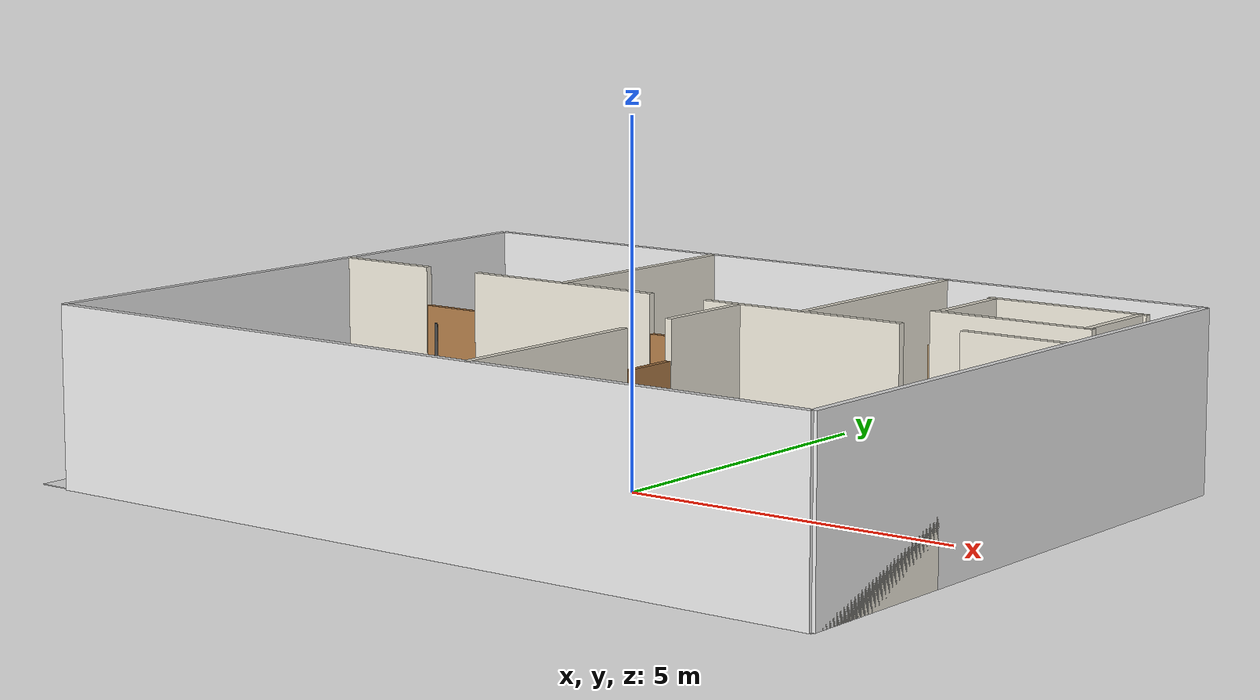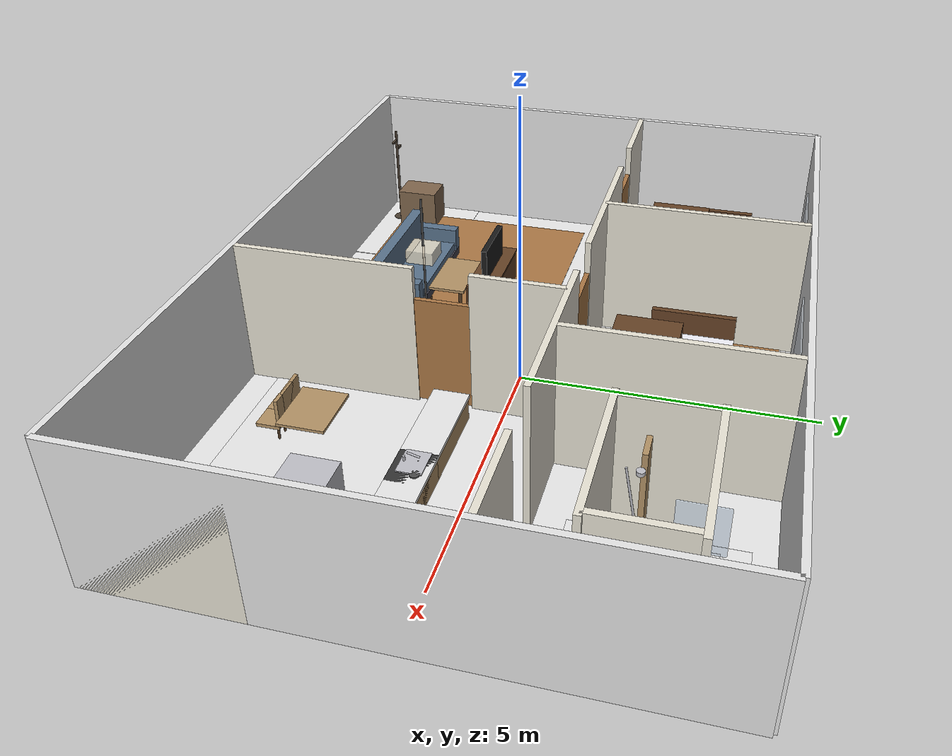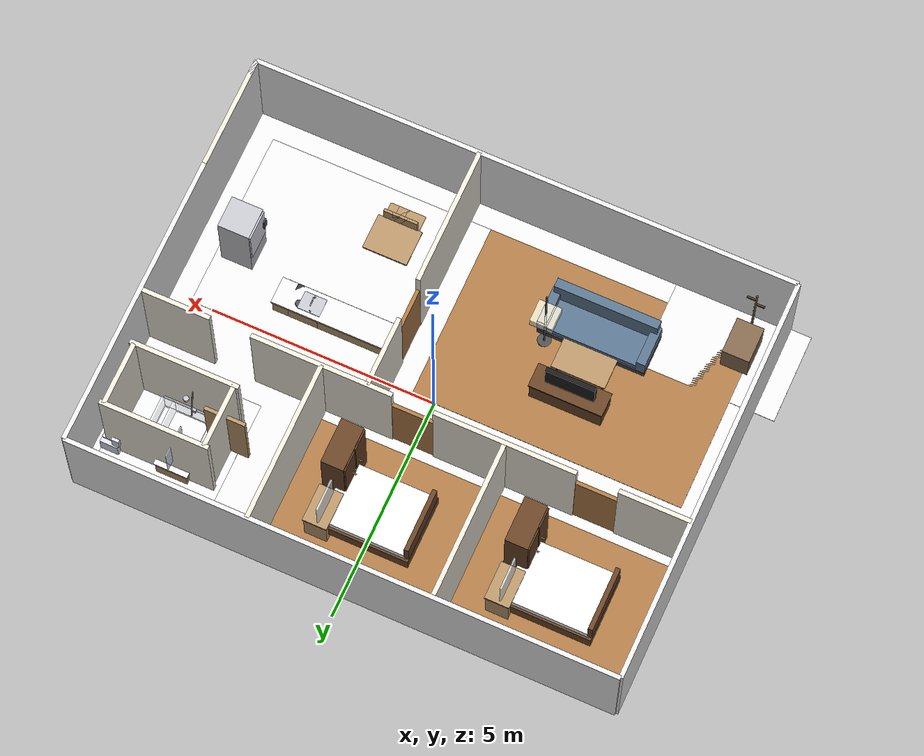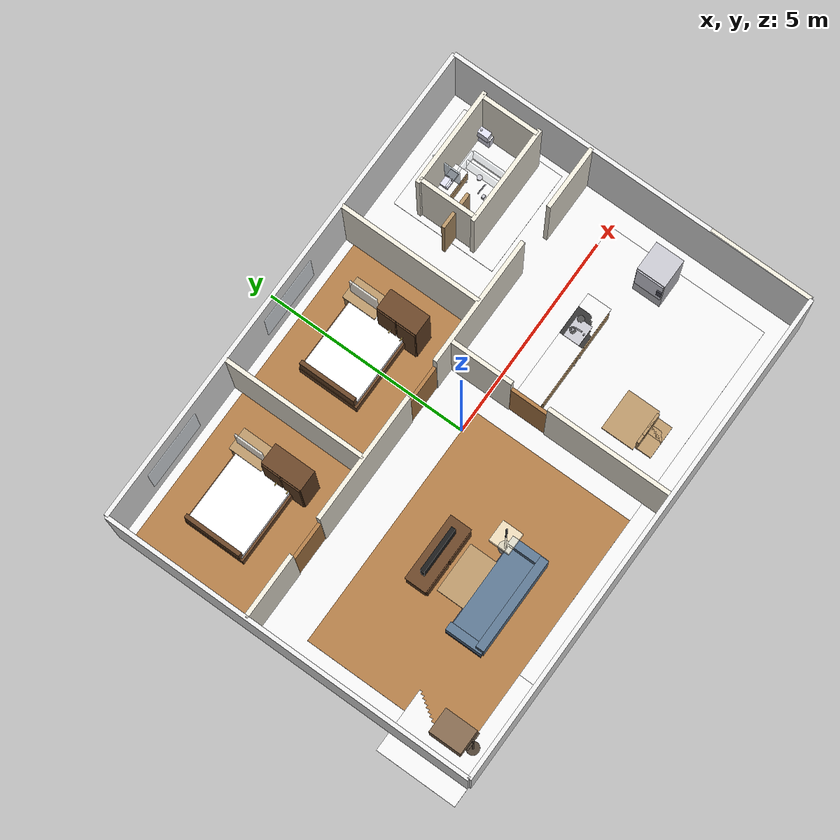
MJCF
<mujoco model="apartment_3br1lr">
  <compiler angle="degree" coordinate="local" inertiafromgeom="true" meshdir="../assets/meshes"/>
  <option timestep="0.003" iterations="100" gravity="0 0 -9.81">
    <flag warmstart="enable"/>
  </option>
  <default>
    <geom solref="0.01 1" solimp="0.95 0.95 0.001"/>
    <joint damping="2" armature="0.01"/>
  </default>
  <asset>
    <texture name="wall_texture" type="2d" builtin="flat" rgb1="0.96 0.94 0.88" width="512" height="512"/>
    <texture name="wood_floor_texture" type="2d" builtin="checker" rgb1="0.72 0.52 0.32" rgb2="0.62 0.42 0.22" width="512" height="512" mark="edge" markrgb="0.45 0.30 0.15"/>
    <texture name="tile_floor_texture" type="2d" builtin="checker" rgb1="0.95 0.95 0.95" rgb2="0.88 0.88 0.88" width="512" height="512" mark="none"/>
    <texture name="wood_dark_texture" type="2d" builtin="gradient" rgb1="0.45 0.30 0.18" rgb2="0.35 0.22 0.12" width="512" height="512" mark="cross" markrgb="0.30 0.20 0.10"/>
    <texture name="wood_light_texture" type="2d" builtin="gradient" rgb1="0.75 0.62 0.45" rgb2="0.65 0.52 0.35" width="512" height="512" mark="cross" markrgb="0.45 0.35 0.22"/>
    <texture name="fabric_texture" type="2d" builtin="flat" rgb1="0.35 0.45 0.55" width="512" height="512"/>
    <texture name="ceramic_texture" type="2d" builtin="gradient" rgb1="0.9 0.9 0.95" rgb2="0.8 0.8 0.88" width="256" height="256"/>
    <texture name="metal_texture" type="2d" builtin="flat" rgb1="0.75 0.75 0.78" width="256" height="256"/>
    <material name="wall_mat" texture="wall_texture" rgba="0.95 0.95 0.95 1.0" specular="0.1" shininess="0.05"/>
    <material name="wall_ext_mat" rgba="0.9 0.9 0.9 1.0" specular="0.1" shininess="0.05"/>
    <material name="wood_floor_mat" texture="wood_floor_texture" reflectance="0.02"/>
    <material name="tile_floor_mat" texture="tile_floor_texture" reflectance="0.01"/>
    <material name="wood_dark_mat" texture="wood_dark_texture"/>
    <material name="wood_light_mat" texture="wood_light_texture"/>
    <material name="fabric_mat" texture="fabric_texture"/>
    <material name="ceramic_mat" texture="ceramic_texture"/>
    <material name="metal_mat" texture="metal_texture"/>
  </asset>
  <worldbody>
    <light name="main_light" pos="0 -2 2.5" dir="0 0 -1" directional="false" diffuse="0.95 0.95 1.0" specular="0.6 0.6 0.6" castshadow="false"/>
    <camera name="main_view" pos="0 -6 6" xyaxes="1 0 0 0 1 0" fovy="60"/>
    <geom name="floor_base" type="plane" size="6 4.5 0.1" material="tile_floor_mat" friction="0.9 0.5 0.01"/>

    <geom name="wall_north" type="box" pos="0 4.5 1.25" size="6 0.05 1.25" material="wall_ext_mat"/>
    <geom name="wall_south" type="box" pos="0 -4.5 1.25" size="6 0.05 1.25" material="wall_ext_mat"/>
    <geom name="wall_east" type="box" pos="6 0 1.25" size="0.05 4.5 1.25" material="wall_ext_mat"/>
    <geom name="wall_west" type="box" pos="-6 0 1.25" size="0.05 4.5 1.25" material="wall_ext_mat"/>

    <geom name="wall_h_mid_left" type="box" pos="-5.225 1 1.25" size="0.775 0.05 1.25" material="wall_mat"/>
    <geom name="wall_h_mid_midleft" type="box" pos="-2 1 1.25" size="1.55 0.05 1.25" material="wall_mat"/>
    <geom name="wall_h_mid_midright" type="box" pos="2 1 1.25" size="1.55 0.05 1.25" material="wall_mat"/>
    <geom name="wall_h_mid_right" type="box" pos="5.225 1 1.25" size="0.775 0.05 1.25" material="wall_mat"/>

    <geom name="wall_v_left_top" type="box" pos="-2 2.75 1.25" size="0.05 1.75 1.25" material="wall_mat"/>
    <geom name="wall_v_right_top" type="box" pos="2 2.75 1.25" size="0.05 1.75 1.25" material="wall_mat"/>

    <geom name="wall_v_kitchen_bottom" type="box" pos="1 -2.975 1.25" size="0.05 1.525 1.25" material="wall_mat"/>
    <geom name="wall_v_kitchen_top" type="box" pos="1 0.225 1.25" size="0.05 0.775 1.25" material="wall_mat"/>

    <geom name="bath_wall_e" type="box" pos="6 -3.25 1.25" size="0.05 1.25 1.25" material="wall_mat"/>
    <!-- 移除负侧卫生间墙体，卫生间迁移到右上区域 -->
    <geom name="rt_inner_n" type="box" pos="4.5 3.5 1.25" size="1.2 0.05 1.25" material="wall_mat"/>
    <geom name="rt_inner_s" type="box" pos="4.5 2.1 1.25" size="1.2 0.05 1.25" material="wall_mat"/>
    <geom name="rt_inner_e" type="box" pos="5.6 2.8 1.25" size="0.05 0.7 1.25" material="wall_mat"/>
    <geom name="rt_inner_w" type="box" pos="3.4 2.8 1.25" size="0.05 0.7 1.25" material="wall_mat"/>

    <geom name="floor_living" type="box" pos="-2.5 -2 0.005" size="3 2 0.005" material="wood_floor_mat" friction="1.0 0.5 0.01" contype="0" conaffinity="0"/>
    <geom name="floor_kitchen" type="box" pos="3.0 -2 0.005" size="2.5 2 0.005" material="tile_floor_mat" friction="0.8 0.4 0.01" contype="0" conaffinity="0"/>
    <geom name="floor_bedroom_left" type="box" pos="-4 2.75 0.005" size="2 1.5 0.005" material="wood_floor_mat" contype="0" conaffinity="0"/>
    <geom name="floor_bedroom_mid" type="box" pos="0 2.75 0.005" size="2 1.5 0.005" material="wood_floor_mat" contype="0" conaffinity="0"/>
    <!-- 右侧卧室改为卫生间区域（右上角） -->
    <geom name="floor_bathroom_top" type="box" pos="4.5 2.8 0.005" size="1.3 1.3 0.005" material="tile_floor_mat" contype="0" conaffinity="0"/>
    <geom name="floor_foyer" type="box" pos="-5 -3.5 0.005" size="1.5 1 0.005" material="tile_floor_mat" contype="0" conaffinity="0"/>
    <!-- 移除负侧卫生间地面 -->

    <body name="main_door" pos="-4 -4.5 0">
      <body name="main_door_panel" pos="-0.45 0 1.0">
        <joint name="main_door_hinge" type="hinge" pos="0 0 0" axis="0 0 1" range="-5 90" damping="5" armature="0.1"/>
        <geom name="main_door_board" type="box" pos="0.45 0 0" size="0.45 0.04 0.95" rgba="0.8 0.8 0.82 1"/>
      </body>
    </body>

    <body name="door_bed_left" pos="-4 1 0">
      <body name="door_bed_left_panel" pos="-0.45 0 1.0">
        <joint name="door_bed_left_hinge" type="hinge" pos="0 0 0" axis="0 0 1" range="-5 90" damping="5" armature="0.1"/>
        <geom name="door_bed_left_board" type="box" pos="0.45 0 0" size="0.45 0.04 0.95" material="wood_floor_mat"/>
      </body>
    </body>

    <body name="door_bed_mid" pos="0 1 0">
      <body name="door_bed_mid_panel" pos="-0.45 0 1.0">
        <joint name="door_bed_mid_hinge" type="hinge" pos="0 0 0" axis="0 0 1" range="-5 90" damping="5" armature="0.1"/>
        <geom name="door_bed_mid_board" type="box" pos="0.45 0 0" size="0.45 0.04 0.95" material="wood_floor_mat"/>
      </body>
    </body>

    <!-- 右侧卧室门移除（房间改为卫生间） -->

    <body name="door_kitchen" pos="1 -1 0">
      <body name="door_kitchen_panel" pos="0 -0.45 1.0">
        <joint name="door_kitchen_hinge" type="hinge" pos="0 0 0" axis="0 0 1" range="-5 90" damping="5" armature="0.1"/>
        <geom name="door_kitchen_board" type="box" pos="0 0.45 0" size="0.04 0.45 0.95" material="wood_floor_mat"/>
      </body>
    </body>

    <!-- 负侧卫生间门移除 -->
    <body name="rt_bath_door" pos="3.4 2.6 0">
      <body name="rt_bath_door_panel" pos="-0.45 0 1.0">
        <joint name="rt_bath_door_hinge" type="hinge" pos="0 0 0" axis="0 0 1" range="-5 90" damping="5" armature="0.1"/>
        <geom name="rt_bath_door_board" type="box" pos="0.45 0 0" size="0.45 0.04 0.95" material="wood_light_mat"/>
      </body>
    </body>
    <!-- 卫生间内间围墙：保持 rt_inner_* 作为干区外间与湿区内间分隔 -->
    <!-- 为卧室添加窗户（透明玻璃，不参与碰撞） -->
    <geom name="bl_window_north" type="box" pos="-4 4.45 1.2" size="0.8 0.02 0.6" rgba="0.9 0.95 1.0 0.4" contype="0" conaffinity="0"/>
    <geom name="bm_window_north" type="box" pos="0 4.45 1.2" size="0.8 0.02 0.6" rgba="0.9 0.95 1.0 0.4" contype="0" conaffinity="0"/>

    <body name="lr_coffee_table" pos="-2.5 -2 0.35">
      <geom name="lr_table_top" type="box" size="0.6 0.4 0.025" material="wood_light_mat" mass="12" friction="0.8 0.4 0.01"/>
      <geom name="lr_leg_1" type="cylinder" pos="0.5 0.3 -0.2" size="0.03 0.175" rgba="0.35 0.25 0.15 1" mass="1.2" friction="1.0 0.5 0.01"/>
      <geom name="lr_leg_2" type="cylinder" pos="0.5 -0.3 -0.2" size="0.03 0.175" rgba="0.35 0.25 0.15 1" mass="1.2" friction="1.0 0.5 0.01"/>
      <geom name="lr_leg_3" type="cylinder" pos="-0.5 0.3 -0.2" size="0.03 0.175" rgba="0.35 0.25 0.15 1" mass="1.2" friction="1.0 0.5 0.01"/>
      <geom name="lr_leg_4" type="cylinder" pos="-0.5 -0.3 -0.2" size="0.03 0.175" rgba="0.35 0.25 0.15 1" mass="1.2" friction="1.0 0.5 0.01"/>
    </body>

    <body name="lr_sofa" pos="-2.5 -2.7 0.25">
      <geom name="lr_sofa_base" type="box" size="1.2 0.45 0.08" rgba="0.25 0.25 0.30 1" mass="20" friction="1.2 0.6 0.01"/>
      <geom name="lr_sofa_seat" type="box" pos="0 0 0.16" size="1.15 0.42 0.08" material="fabric_mat" mass="8" friction="1.5 0.8 0.02"/>
      <geom name="lr_sofa_backrest" type="box" pos="0 -0.38 0.45" size="1.15 0.1 0.37" material="fabric_mat" mass="12"/>
      <geom name="lr_sofa_armrest_left" type="box" pos="-1.1 0 0.30" size="0.1 0.45 0.22" material="fabric_mat" mass="4"/>
      <geom name="lr_sofa_armrest_right" type="box" pos="1.1 0 0.30" size="0.1 0.45 0.22" material="fabric_mat" mass="4"/>
    </body>

    <body name="lr_tv_stand" pos="-2.5 -1.2 0.3">
      <geom name="lr_tv_stand_body" type="box" size="0.8 0.25 0.3" material="wood_dark_mat" mass="30"/>
      <geom name="lr_tv_stand_top" type="box" pos="0 0 0.32" size="0.82 0.27 0.02" material="wood_dark_mat" mass="8"/>
      <body name="lr_tv_stand_door_left" pos="-0.4 -0.27 0">
        <joint name="lr_tv_door_left_hinge" type="hinge" pos="-0.38 0 0" axis="0 0 1" range="-90 5" damping="3" armature="0.05"/>
        <geom name="lr_tv_door_left_panel" type="box" pos="0 0 0" size="0.38 0.02 0.28" material="wood_dark_mat" mass="3" friction="1.0 0.5 0.01"/>
        <geom name="lr_tv_door_left_knob" type="sphere" pos="0.3 -0.04 0" size="0.015" rgba="0.7 0.6 0.3 1" mass="0.05"/>
      </body>
      <body name="lr_tv_stand_door_right" pos="0.4 -0.27 0">
        <joint name="lr_tv_door_right_hinge" type="hinge" pos="0.38 0 0" axis="0 0 1" range="-5 90" damping="3" armature="0.05"/>
        <geom name="lr_tv_door_right_panel" type="box" pos="0 0 0" size="0.38 0.02 0.28" material="wood_dark_mat" mass="3" friction="1.0 0.5 0.01"/>
        <geom name="lr_tv_door_right_knob" type="sphere" pos="-0.3 -0.04 0" size="0.015" rgba="0.7 0.6 0.3 1" mass="0.05"/>
      </body>
      <geom name="lr_tv_screen" type="box" pos="0 0 0.6" size="0.55 0.05 0.35" rgba="0.1 0.1 0.1 1" mass="10"/>
      <geom name="lr_tv_stand_pole" type="cylinder" pos="0 0 0.45" size="0.05 0.1" rgba="0.2 0.2 0.2 1" mass="2"/>
    </body>
    <!-- 客厅落地灯，提升照明与真实感 -->
    <body name="lr_floor_lamp" pos="-1.5 -2.2 0">
      <geom name="lr_lamp_base" type="cylinder" size="0.15 0.02" rgba="0.3 0.3 0.3 1" mass="2"/>
      <geom name="lr_lamp_pole" type="cylinder" pos="0 0 1.2" size="0.02 1.2" rgba="0.3 0.3 0.3 1" mass="1.5"/>
      <geom name="lr_lamp_shade" type="box" pos="0 0 1.35" size="0.25 0.25 0.12" rgba="1.0 0.95 0.85 0.8" mass="0.8" contype="0" conaffinity="0"/>
    </body>

    <body name="k_refrigerator" pos="5.0 -1.5 0.85">
      <geom name="k_fridge_body" type="box" size="0.35 0.35 0.85" material="metal_mat" mass="80"/>
      <geom name="k_fridge_door" type="box" pos="-0.36 0 0.3" size="0.02 0.33 0.5" rgba="0.85 0.85 0.9 1" mass="8"/>
      <geom name="k_fridge_handle" type="box" pos="-0.4 -0.28 0.3" size="0.015 0.06 0.15" rgba="0.3 0.3 0.35 1" mass="0.2"/>
    </body>

    <body name="k_counter" pos="2.6 -0.8 0.45">
      <geom name="k_counter_top" type="box" size="1.3 0.3 0.03" material="tile_floor_mat" mass="40"/>
      <geom name="k_counter_cabinet" type="box" pos="0 0 -0.42" size="1.28 0.28 0.42" material="wood_light_mat" mass="35"/>
      <body name="k_counter_door_left" pos="-0.6 -0.3 -0.42">
        <joint name="k_counter_door_left_hinge" type="hinge" pos="-0.65 0 0" axis="0 0 1" range="-90 5" damping="3" armature="0.05"/>
        <geom name="k_counter_door_left_panel" type="box" pos="0 0 0" size="0.6 0.02 0.4" material="wood_light_mat" mass="3" friction="1.0 0.5 0.01"/>
        <geom name="k_counter_door_left_knob" type="sphere" pos="0.5 -0.04 0.2" size="0.015" rgba="0.85 0.85 0.88 1" mass="0.05"/>
      </body>
      <body name="k_counter_door_right" pos="0.6 -0.3 -0.42">
        <joint name="k_counter_door_right_hinge" type="hinge" pos="0.65 0 0" axis="0 0 1" range="-5 90" damping="3" armature="0.05"/>
        <geom name="k_counter_door_right_panel" type="box" pos="0 0 0" size="0.6 0.02 0.4" material="wood_light_mat" mass="3" friction="1.0 0.5 0.01"/>
        <geom name="k_counter_door_right_knob" type="sphere" pos="-0.5 -0.04 0.2" size="0.015" rgba="0.85 0.85 0.88 1" mass="0.05"/>
      </body>
      <geom name="k_sink_basin" type="box" pos="0.5 0 -0.05" size="0.25 0.2 0.1" material="metal_mat" mass="5"/>
      <geom name="k_faucet_base" type="cylinder" pos="0.5 -0.15 0.08" size="0.02 0.05" material="metal_mat" mass="0.3"/>
      <geom name="k_faucet_spout" type="cylinder" pos="0.5 0 0.18" size="0.015 0.1" material="metal_mat" mass="0.2" euler="75 0 0"/>
    </body>

    <body name="k_stove" pos="3.2 -0.8 0.45">
      <geom name="k_stove_top" type="box" size="0.35 0.3 0.03" rgba="0.2 0.2 0.2 1" mass="25"/>
      <geom name="k_stove_body" type="box" pos="0 0 -0.42" size="0.33 0.28 0.42" material="wood_light_mat" mass="30"/>
      <geom name="k_burner_1" type="cylinder" pos="-0.15 0.1 0.04" size="0.08 0.01" rgba="0.3 0.3 0.3 1" mass="0.5"/>
      <geom name="k_burner_2" type="cylinder" pos="0.15 0.1 0.04" size="0.08 0.01" rgba="0.3 0.3 0.3 1" mass="0.5"/>
    </body>

    <body name="k_dining_table" pos="2.2 -2.8 0.4">
      <geom name="k_dining_table_top" type="box" size="0.5 0.4 0.025" material="wood_light_mat" mass="15"/>
      <geom name="k_dining_table_leg" type="cylinder" pos="0 0 -0.21" size="0.04 0.19" rgba="0.35 0.25 0.15 1" mass="3"/>
    </body>
    <body name="k_dining_chair_1" pos="2.2 -3.4 0.25">
      <geom name="k_chair1_seat" type="box" size="0.2 0.2 0.03" material="wood_light_mat" mass="3"/>
      <geom name="k_chair1_back" type="box" pos="0 0.18 0.25" size="0.18 0.03 0.25" material="wood_light_mat" mass="2"/>
      <geom name="k_chair1_leg1" type="cylinder" pos="0.15 0.15 -0.135" size="0.02 0.115" rgba="0.35 0.25 0.15 1" mass="0.3"/>
      <geom name="k_chair1_leg2" type="cylinder" pos="-0.15 0.15 -0.135" size="0.02 0.115" rgba="0.35 0.25 0.15 1" mass="0.3"/>
    </body>
    <!-- 增加餐椅以符合真实布置 -->
    <body name="k_dining_chair_2" pos="2.0 -3.4 0.25">
      <geom name="k_chair2_seat" type="box" size="0.2 0.2 0.03" material="wood_light_mat" mass="3"/>
      <geom name="k_chair2_back" type="box" pos="0 0.18 0.25" size="0.18 0.03 0.25" material="wood_light_mat" mass="2"/>
      <geom name="k_chair2_leg1" type="cylinder" pos="0.15 0.15 -0.135" size="0.02 0.115" rgba="0.35 0.25 0.15 1" mass="0.3"/>
      <geom name="k_chair2_leg2" type="cylinder" pos="-0.15 0.15 -0.135" size="0.02 0.115" rgba="0.35 0.25 0.15 1" mass="0.3"/>
    </body>
    <body name="k_dining_chair_3" pos="2.4 -3.4 0.25">
      <geom name="k_chair3_seat" type="box" size="0.2 0.2 0.03" material="wood_light_mat" mass="3"/>
      <geom name="k_chair3_back" type="box" pos="0 0.18 0.25" size="0.18 0.03 0.25" material="wood_light_mat" mass="2"/>
      <geom name="k_chair3_leg1" type="cylinder" pos="0.15 0.15 -0.135" size="0.02 0.115" rgba="0.35 0.25 0.15 1" mass="0.3"/>
      <geom name="k_chair3_leg2" type="cylinder" pos="-0.15 0.15 -0.135" size="0.02 0.115" rgba="0.35 0.25 0.15 1" mass="0.3"/>
    </body>

    <body name="bl_bed" pos="-4 2.75 0.4">
      <geom name="bl_bed_frame" type="box" size="1.0 0.75 0.18" material="wood_dark_mat" mass="45"/>
      <geom name="bl_bed_mattress" type="box" pos="0 0 0.23" size="0.95 0.7 0.12" rgba="0.95 0.95 0.98 1" mass="22" friction="1.5 0.8 0.02" solref="0.005 0.8" solimp="0.9 0.95 0.001"/>
      <geom name="bl_bed_headboard" type="box" pos="-0.95 0 0.5" size="0.05 0.7 0.25" material="wood_dark_mat" mass="10"/>
      <geom name="bl_bed_blanket" type="box" pos="0.2 0 0.29" size="0.7 0.65 0.015" rgba="0.9 0.9 0.95 1" mass="5" friction="1.2 0.6 0.02"/>
    </body>
    <body name="bl_wardrobe" pos="-3.0 2.2 1.0">
      <geom name="bl_wardrobe_body" type="box" size="0.25 0.5 1.0" material="wood_dark_mat" mass="70"/>
      <geom name="bl_wardrobe_door_left" type="box" pos="-0.26 -0.25 0" size="0.02 0.23 0.95" material="wood_dark_mat" mass="8"/>
      <geom name="bl_wardrobe_door_right" type="box" pos="-0.26 0.25 0" size="0.02 0.23 0.95" material="wood_dark_mat" mass="8"/>
      <geom name="bl_wardrobe_handle_left" type="cylinder" pos="-0.3 -0.15 0" size="0.015 0.06" rgba="0.7 0.6 0.3 1" mass="0.1" euler="0 90 0"/>
      <geom name="bl_wardrobe_handle_right" type="cylinder" pos="-0.3 0.15 0" size="0.015 0.06" rgba="0.7 0.6 0.3 1" mass="0.1" euler="0 90 0"/>
    </body>
    <body name="bl_nightstand_1" pos="-3.3 2.75 0.3">
      <geom name="bl_nightstand1_body" type="box" size="0.25 0.2 0.3" material="wood_light_mat" mass="12"/>
      <geom name="bl_nightstand1_top" type="box" pos="0 0 0.32" size="0.27 0.22 0.02" material="wood_light_mat" mass="3"/>
    </body>
    <body name="bl_nightstand_2" pos="-4.7 2.75 0.3">
      <geom name="bl_nightstand2_body" type="box" size="0.25 0.2 0.3" material="wood_light_mat" mass="12"/>
      <geom name="bl_nightstand2_top" type="box" pos="0 0 0.32" size="0.27 0.22 0.02" material="wood_light_mat" mass="3"/>
    </body>
    <!-- 卧室左侧台灯 -->
    <body name="bl_bed_lamp" pos="-3.3 2.95 0">
      <geom name="bl_lamp_base" type="cylinder" size="0.08 0.02" rgba="0.3 0.3 0.3 1" mass="0.5"/>
      <geom name="bl_lamp_pole" type="cylinder" pos="0 0 0.25" size="0.01 0.25" rgba="0.3 0.3 0.3 1" mass="0.2"/>
      <geom name="bl_lamp_shade" type="box" pos="0 0 0.32" size="0.12 0.12 0.08" rgba="1.0 0.95 0.85 0.8" mass="0.3" contype="0" conaffinity="0"/>
    </body>
    <body name="bl_dresser" pos="-3.0 3.2 0.4">
      <geom name="bl_dresser_body" type="box" size="0.25 0.4 0.4" material="wood_light_mat" mass="35"/>
      <geom name="bl_dresser_top" type="box" pos="0 0 0.42" size="0.27 0.42 0.02" material="wood_light_mat" mass="8"/>
      <geom name="bl_dresser_mirror" type="box" pos="-0.05 0 0.85" size="0.02 0.35 0.4" rgba="0.9 0.95 1.0 0.7" mass="3"/>
    </body>

    <body name="bm_bed" pos="0 2.75 0.4">
      <geom name="bm_bed_frame" type="box" size="1.0 0.75 0.18" material="wood_dark_mat" mass="45"/>
      <geom name="bm_bed_mattress" type="box" pos="0 0 0.23" size="0.95 0.7 0.12" rgba="0.95 0.95 0.98 1" mass="22" friction="1.5 0.8 0.02" solref="0.005 0.8" solimp="0.9 0.95 0.001"/>
      <geom name="bm_bed_headboard" type="box" pos="-0.95 0 0.5" size="0.05 0.7 0.25" material="wood_dark_mat" mass="10"/>
      <geom name="bm_bed_blanket" type="box" pos="0.2 0 0.29" size="0.7 0.65 0.015" rgba="0.9 0.9 0.95 1" mass="5" friction="1.2 0.6 0.02"/>
    </body>
    <body name="bm_wardrobe" pos="1.0 2.2 1.0">
      <geom name="bm_wardrobe_body" type="box" size="0.25 0.5 1.0" material="wood_dark_mat" mass="70"/>
      <geom name="bm_wardrobe_door_left" type="box" pos="-0.26 -0.25 0" size="0.02 0.23 0.95" material="wood_dark_mat" mass="8"/>
      <geom name="bm_wardrobe_door_right" type="box" pos="-0.26 0.25 0" size="0.02 0.23 0.95" material="wood_dark_mat" mass="8"/>
      <geom name="bm_wardrobe_handle_left" type="cylinder" pos="-0.3 -0.15 0" size="0.015 0.06" rgba="0.7 0.6 0.3 1" mass="0.1" euler="0 90 0"/>
      <geom name="bm_wardrobe_handle_right" type="cylinder" pos="-0.3 0.15 0" size="0.015 0.06" rgba="0.7 0.6 0.3 1" mass="0.1" euler="0 90 0"/>
    </body>
    <body name="bm_nightstand_1" pos="0.7 2.75 0.3">
      <geom name="bm_nightstand1_body" type="box" size="0.25 0.2 0.3" material="wood_light_mat" mass="12"/>
      <geom name="bm_nightstand1_top" type="box" pos="0 0 0.32" size="0.27 0.22 0.02" material="wood_light_mat" mass="3"/>
    </body>
    <body name="bm_nightstand_2" pos="-0.7 2.75 0.3">
      <geom name="bm_nightstand2_body" type="box" size="0.25 0.2 0.3" material="wood_light_mat" mass="12"/>
      <geom name="bm_nightstand2_top" type="box" pos="0 0 0.32" size="0.27 0.22 0.02" material="wood_light_mat" mass="3"/>
    </body>
    <!-- 卧室中间台灯 -->
    <body name="bm_bed_lamp" pos="0.7 2.95 0">
      <geom name="bm_lamp_base" type="cylinder" size="0.08 0.02" rgba="0.3 0.3 0.3 1" mass="0.5"/>
      <geom name="bm_lamp_pole" type="cylinder" pos="0 0 0.25" size="0.01 0.25" rgba="0.3 0.3 0.3 1" mass="0.2"/>
      <geom name="bm_lamp_shade" type="box" pos="0 0 0.32" size="0.12 0.12 0.08" rgba="1.0 0.95 0.85 0.8" mass="0.3" contype="0" conaffinity="0"/>
    </body>
    <body name="bm_dresser" pos="1.0 3.2 0.4">
      <geom name="bm_dresser_body" type="box" size="0.25 0.4 0.4" material="wood_light_mat" mass="35"/>
      <geom name="bm_dresser_top" type="box" pos="0 0 0.42" size="0.27 0.42 0.02" material="wood_light_mat" mass="8"/>
      <geom name="bm_dresser_mirror" type="box" pos="-0.05 0 0.85" size="0.02 0.35 0.4" rgba="0.9 0.95 1.0 0.7" mass="3"/>
    </body>

    <!-- 清理第三卧室占位对象，场景为两卧室 -->

    <body name="ba_bathroom_sink" pos="4.2 3.4 0.45">
      <geom name="ba_sink_cabinet_body" type="box" pos="0 0 -0.4" size="0.35 0.25 0.4" material="wood_light_mat" mass="25"/>
      <geom name="ba_sink_countertop" type="box" size="0.38 0.27 0.03" material="tile_floor_mat" mass="12"/>
      <geom name="ba_bathroom_sink_basin" type="box" pos="0 0 0.05" size="0.2 0.15 0.08" material="ceramic_mat" mass="5"/>
      <geom name="ba_sink_faucet_base" type="cylinder" pos="0 -0.12 0.18" size="0.015 0.05" material="metal_mat" mass="0.2"/>
      <geom name="ba_sink_faucet_spout" type="cylinder" pos="0 0 0.24" size="0.012 0.06" material="metal_mat" mass="0.15" euler="60 0 0"/>
      <geom name="ba_bathroom_mirror" type="box" pos="-0.02 0 0.75" size="0.01 0.35 0.4" rgba="0.9 0.95 1.0 0.85" mass="3" contype="0" conaffinity="0"/>
      <body name="ba_sink_cabinet_door" pos="0 -0.27 -0.4">
        <joint name="ba_sink_door_hinge" type="hinge" pos="-0.35 0 0" axis="0 0 1" range="-90 5" damping="3" armature="0.05"/>
        <geom name="ba_sink_door_panel" type="box" pos="0 0 0" size="0.35 0.02 0.38" material="wood_light_mat" mass="3" friction="1.0 0.5 0.01"/>
        <geom name="ba_sink_door_knob" type="sphere" pos="0.28 -0.04 0" size="0.015" rgba="0.85 0.85 0.88 1" mass="0.05"/>
      </body>
    </body>

    <body name="ba_toilet" pos="5.6 3.4 0.2">
      <geom name="ba_toilet_base" type="box" size="0.2 0.25 0.2" material="ceramic_mat" mass="25"/>
      <geom name="ba_toilet_tank" type="box" pos="-0.15 0 0.35" size="0.08 0.22 0.15" material="ceramic_mat" mass="15"/>
      <body name="ba_toilet_seat" pos="0 0 0.22">
        <joint name="ba_toilet_seat_hinge" type="hinge" pos="0 0.2 0" axis="1 0 0" range="0 100" damping="2" armature="0.03"/>
        <geom name="ba_toilet_seat_ring" type="box" pos="0 -0.05 0" size="0.18 0.2 0.02" rgba="0.95 0.95 0.98 1" mass="1.5" friction="0.8 0.4 0.01"/>
      </body>
      <geom name="ba_toilet_flush_button" type="cylinder" pos="-0.15 0 0.52" size="0.025 0.01" rgba="0.85 0.85 0.90 1" mass="0.05"/>
    </body>

    <body name="ba_shower_area" pos="4.5 2.8 0">
      <geom name="ba_shower_base" type="box" pos="0 0 0.02" size="0.5 0.5 0.02" material="tile_floor_mat" mass="20"/>
      <geom name="ba_shower_glass_front" type="box" pos="0.5 0 0.3" size="0.02 0.48 0.3" rgba="0.9 0.95 1.0 0.3" mass="8" contype="1" conaffinity="1"/>
      <geom name="ba_shower_glass_left" type="box" pos="0 -0.5 0.3" size="0.48 0.02 0.3" rgba="0.9 0.95 1.0 0.3" mass="8" contype="1" conaffinity="1"/>
      <geom name="ba_shower_glass_right" type="box" pos="0 0.5 0.3" size="0.48 0.02 0.3" rgba="0.9 0.95 1.0 0.3" mass="8" contype="1" conaffinity="1"/>
      <geom name="ba_shower_partition" type="box" pos="0.25 0 0.3" size="0.02 0.48 0.3" rgba="0.9 0.95 1.0 0.25" mass="6" contype="1" conaffinity="1"/>
      <geom name="ba_shower_pipe" type="cylinder" pos="-0.3 -0.3 1.5" size="0.015 0.5" material="metal_mat" mass="1" euler="10 0 0"/>
      <geom name="ba_shower_head" type="cylinder" pos="-0.25 -0.2 2.0" size="0.06 0.03" material="metal_mat" mass="0.5"/>
      <geom name="ba_shower_faucet" type="box" pos="-0.3 -0.35 1.0" size="0.04 0.03 0.06" material="metal_mat" mass="0.3"/>
    </body>
    <body name="foyer_shoe_cabinet" pos="-5.3 -3.6 0.35">
      <geom name="foyer_shoe_cabinet_body" type="box" size="0.3 0.4 0.4" rgba="0.5 0.4 0.3 1"/>
    </body>
    <body name="foyer_coat_rack" pos="-5.3 -4.1 0">
      <geom name="foyer_coat_rack_base" type="cylinder" size="0.15 0.02" rgba="0.3 0.25 0.2 1" mass="3"/>
      <geom name="foyer_coat_rack_pole" type="cylinder" pos="0 0 1.0" size="0.025 1.0" rgba="0.3 0.25 0.2 1" mass="2"/>
      <geom name="foyer_coat_rack_hook1" type="box" pos="0.1 0 1.8" size="0.1 0.02 0.02" rgba="0.3 0.25 0.2 1" mass="0.1"/>
      <geom name="foyer_coat_rack_hook2" type="box" pos="-0.1 0 1.6" size="0.1 0.02 0.02" rgba="0.3 0.25 0.2 1" mass="0.1"/>
    </body>
  </worldbody>
  <actuator/>
</mujoco>
